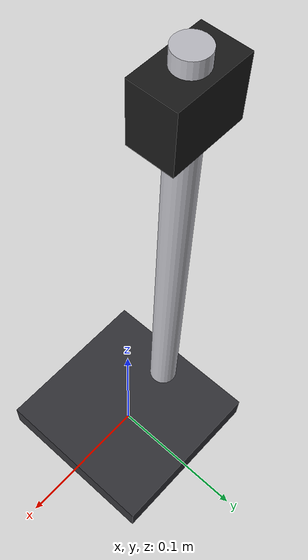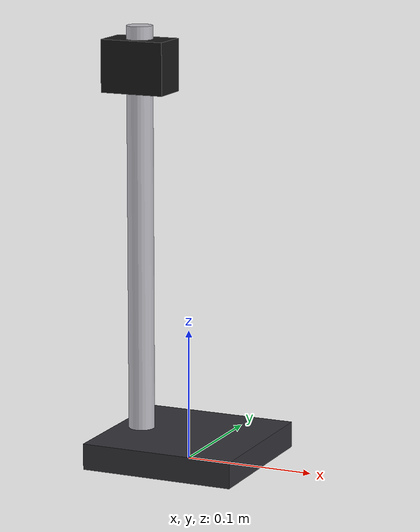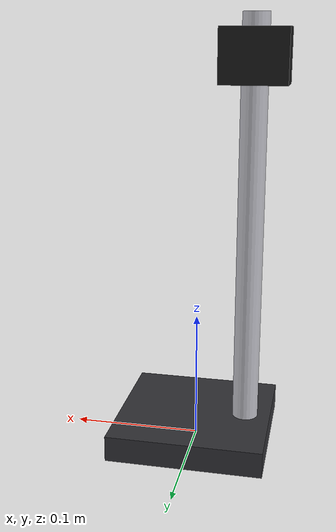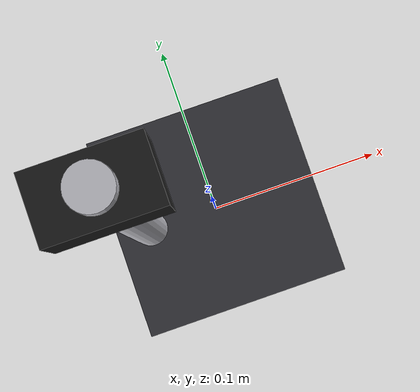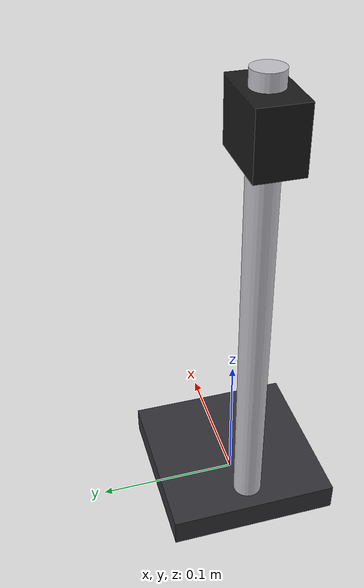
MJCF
<?xml version="1.0" encoding="utf-8"?>
<mujoco model="electrospinning_setup">
  <compiler angle="radian" autolimits="true"/>
  <default>
    <default class="body"><geom contype="1" conaffinity="1"/></default>
  </default>
  <worldbody>
    <body name="base">
      <geom type="box" size="0.06 0.06 0.01" pos="0 0 0.01" rgba="0.2 0.2 0.22 1" class="body"/>
      <geom type="cylinder" size="0.01 0.16" pos="-0.04 0 0.17" rgba="0.75 0.75 0.78 1" class="body"/>
      <body name="syringe_pump" pos="-0.04 0 0.30">
        <joint name="syringe_pump_joint" type="slide" axis="0 0 1" range="-0.06 0" damping="1.0" frictionloss="0.3"/>
  <geom type="box" size="0.025 0.015 0.02" pos="0 0 0" rgba="0.1 0.1 0.1 1" class="body"/>
      </body>
    </body>
  </worldbody>
</mujoco>
